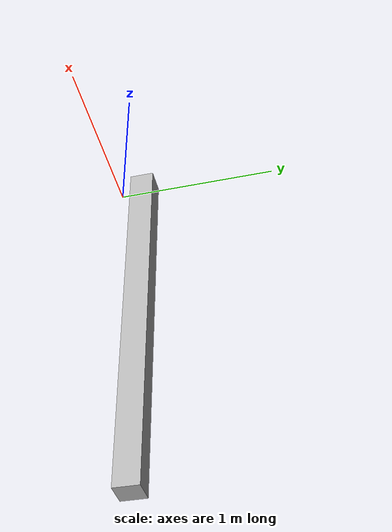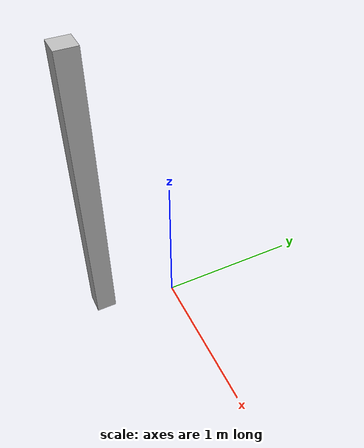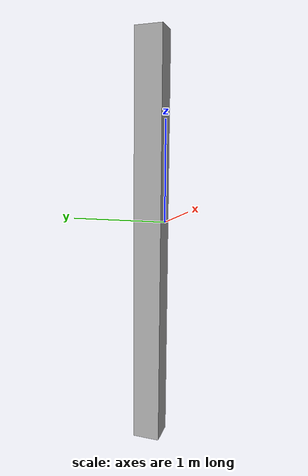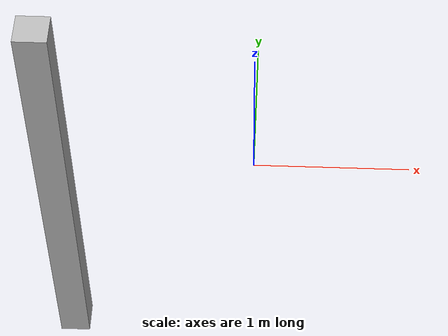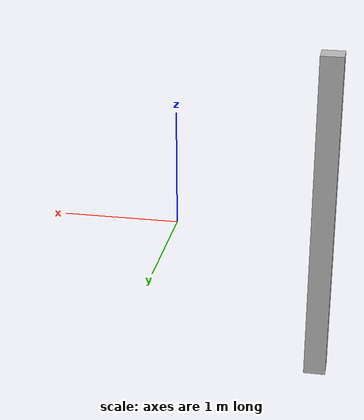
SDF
<?xml version='1.0' ?>
<sdf version='1.6'>
  <model name='room_w_lidar'>
    <static>true</static>
    <link name='back_wall'>
      <pose frame=''>-1.25 -0.25 0 0 0 0</pose>
      <visual name='wall'>
        <geometry>
          <box>
            <size>0.2 0.2 3</size>
          </box>
        </geometry>
      </visual>
      <collision name='wall'>
        <geometry>
          <box>
            <size>0.2 0.2 3</size>
          </box>
        </geometry>
      </collision>
    </link>
  </model>
</sdf>
